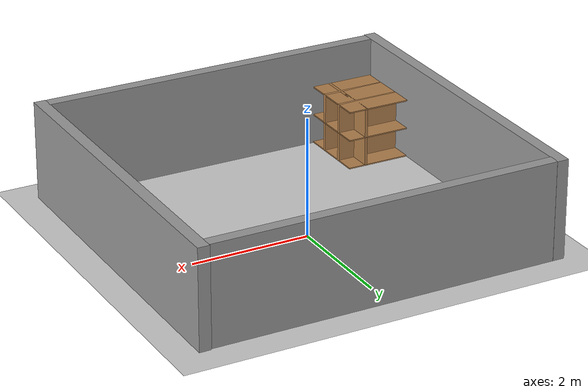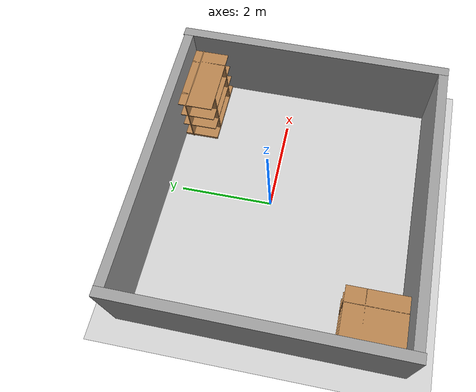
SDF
<sdf version="1.6">
 <world name="default">
  <light name="sun" type="directional">
   <pose>0 0 10 0 -0 0</pose>
   <diffuse>0.8 0.8 0.8 1</diffuse>
   <specular>0.1 0.1 0.1 1</specular>
   <attenuation>
    <range>1000</range>
    <constant>0.9</constant>
    <linear>0.01</linear>
    <quadratic>0.001</quadratic>
   </attenuation>
   <direction>-0.5 0.5 -1</direction>
  </light>
  <model name="ground_plane">
   <static>1</static>
   <link name="link">
    <collision name="collision">
     <geometry><plane><normal>0 0 1</normal><size>100 100</size></plane></geometry>
     <surface><friction><ode><mu>100</mu><mu2>50</mu2></ode></friction></surface>
    </collision>
    <visual name="visual">
     <cast_shadows>0</cast_shadows>
     <geometry><plane><normal>0 0 1</normal><size>100 100</size></plane></geometry>
     <material>
      <script><uri>file://media/materials/scripts/gazebo.material</uri><name>Gazebo/Grey</name></script>
     </material>
    </visual>
   </link>
  </model>
  <physics name="default_physics" default="0" type="ode">
   <max_step_size>0.01</max_step_size>
   <real_time_factor>1</real_time_factor>
   <real_time_update_rate>100</real_time_update_rate>
  </physics>
  <gravity>0 0 -9.8</gravity>
  <magnetic_field>6e-06 2.3e-05 -4.2e-05</magnetic_field>
  <atmosphere type="adiabatic"/>
  <scene><ambient>0.4 0.4 0.4 1</ambient><background>0.7 0.7 0.7 1</background><shadows>1</shadows></scene>
  <spherical_coordinates>
   <surface_model>EARTH_WGS84</surface_model>
   <latitude_deg>0</latitude_deg>
   <longitude_deg>0</longitude_deg>
   <elevation>0</elevation>
   <heading_deg>0</heading_deg>
  </spherical_coordinates>
  <model name="grey_wall">
   <link name="link">
    <pose>-0.48569 0.188637 0.831452 0 -0 0</pose>
    <inertial>
     <inertia><ixx>0</ixx><ixy>0</ixy><ixz>0</ixz><iyy>0</iyy><iyz>0</iyz><izz>0</izz></inertia>
     <mass>0</mass>
    </inertial>
    <visual name="visual">
     <cast_shadows>0</cast_shadows>
     <geometry><box><size>5.86088 0.2 1.66772</size></box></geometry>
     <material>
      <script>
       <uri>model://grey_wall/materials/scripts</uri>
       <uri>model://grey_wall/materials/textures</uri>
       <name>vrc/grey_wall</name>
      </script>
      <shader type="pixel"/>
      <ambient>1 1 1 1</ambient>
      <diffuse>1 1 1 1</diffuse>
      <specular>0 0 0 1</specular>
      <emissive>0 0 0 1</emissive>
     </material>
    </visual>
    <collision name="collision">
     <geometry><box><size>5.86088 0.2 1.66772</size></box></geometry>
     <surface>
      <friction>
       <ode><mu>1</mu><mu2>1</mu2><fdir1>0 0 0</fdir1><slip1>0</slip1><slip2>0</slip2></ode>
       <torsional>
        <coefficient>1</coefficient>
        <patch_radius>0</patch_radius>
        <surface_radius>0</surface_radius>
        <use_patch_radius>1</use_patch_radius>
        <ode><slip>0</slip></ode>
       </torsional>
      </friction>
      <bounce><restitution_coefficient>0</restitution_coefficient><threshold>1e+06</threshold></bounce>
      <contact>
       <collide_without_contact>0</collide_without_contact>
       <collide_without_contact_bitmask>1</collide_without_contact_bitmask>
       <collide_bitmask>1</collide_bitmask>
       <ode>
        <soft_cfm>0</soft_cfm>
        <soft_erp>0.2</soft_erp>
        <kp>1e+13</kp>
        <kd>1</kd>
        <max_vel>0.01</max_vel>
        <min_depth>0</min_depth>
       </ode>
       <bullet>
        <split_impulse>1</split_impulse>
        <split_impulse_penetration_threshold>-0.01</split_impulse_penetration_threshold>
        <soft_cfm>0</soft_cfm>
        <soft_erp>0.2</soft_erp>
        <kp>1e+13</kp>
        <kd>1</kd>
       </bullet>
      </contact>
     </surface>
    </collision>
   </link>
   <static>1</static>
   <pose>0.507405 2.23419 0 0 -0 0</pose>
  </model>
  <model name="grey_wall_0">
   <link name="link">
    <pose>-0.48569 0.188637 0.831452 0 -0 0</pose>
    <inertial>
     <inertia><ixx>0</ixx><ixy>0</ixy><ixz>0</ixz><iyy>0</iyy><iyz>0</iyz><izz>0</izz></inertia>
     <mass>0</mass>
    </inertial>
    <visual name="visual">
     <cast_shadows>0</cast_shadows>
     <geometry><box><size>5.86088 0.2 1.66772</size></box></geometry>
     <material>
      <script>
       <uri>model://grey_wall/materials/scripts</uri>
       <uri>model://grey_wall/materials/textures</uri>
       <name>vrc/grey_wall</name>
      </script>
      <shader type="pixel"/>
      <ambient>1 1 1 1</ambient>
      <diffuse>1 1 1 1</diffuse>
      <specular>0 0 0 1</specular>
      <emissive>0 0 0 1</emissive>
     </material>
    </visual>
    <collision name="collision">
     <geometry><box><size>5.86088 0.2 1.66772</size></box></geometry>
     <surface>
      <friction>
       <ode><mu>1</mu><mu2>1</mu2><fdir1>0 0 0</fdir1><slip1>0</slip1><slip2>0</slip2></ode>
       <torsional>
        <coefficient>1</coefficient>
        <patch_radius>0</patch_radius>
        <surface_radius>0</surface_radius>
        <use_patch_radius>1</use_patch_radius>
        <ode><slip>0</slip></ode>
       </torsional>
      </friction>
      <bounce><restitution_coefficient>0</restitution_coefficient><threshold>1e+06</threshold></bounce>
      <contact>
       <collide_without_contact>0</collide_without_contact>
       <collide_without_contact_bitmask>1</collide_without_contact_bitmask>
       <collide_bitmask>1</collide_bitmask>
       <ode>
        <soft_cfm>0</soft_cfm>
        <soft_erp>0.2</soft_erp>
        <kp>1e+13</kp>
        <kd>1</kd>
        <max_vel>0.01</max_vel>
        <min_depth>0</min_depth>
       </ode>
       <bullet>
        <split_impulse>1</split_impulse>
        <split_impulse_penetration_threshold>-0.01</split_impulse_penetration_threshold>
        <soft_cfm>0</soft_cfm>
        <soft_erp>0.2</soft_erp>
        <kp>1e+13</kp>
        <kd>1</kd>
       </bullet>
      </contact>
     </surface>
    </collision>
   </link>
   <static>1</static>
   <pose>0.487991 -3.39836 0 0 -0 0</pose>
  </model>
  <model name="grey_wall_1">
   <link name="link">
    <pose>-0.48569 0.188637 0.831452 0 -0 0</pose>
    <inertial>
     <inertia><ixx>0</ixx><ixy>0</ixy><ixz>0</ixz><iyy>0</iyy><iyz>0</iyz><izz>0</izz></inertia>
     <mass>0</mass>
    </inertial>
    <visual name="visual">
     <cast_shadows>0</cast_shadows>
     <geometry><box><size>5.86088 0.2 1.66772</size></box></geometry>
     <material>
      <script>
       <uri>model://grey_wall/materials/scripts</uri>
       <uri>model://grey_wall/materials/textures</uri>
       <name>vrc/grey_wall</name>
      </script>
      <shader type="pixel"/>
      <ambient>1 1 1 1</ambient>
      <diffuse>1 1 1 1</diffuse>
      <specular>0 0 0 1</specular>
      <emissive>0 0 0 1</emissive>
     </material>
    </visual>
    <collision name="collision">
     <geometry><box><size>5.86088 0.2 1.66772</size></box></geometry>
     <surface>
      <friction>
       <ode><mu>1</mu><mu2>1</mu2><fdir1>0 0 0</fdir1><slip1>0</slip1><slip2>0</slip2></ode>
       <torsional>
        <coefficient>1</coefficient>
        <patch_radius>0</patch_radius>
        <surface_radius>0</surface_radius>
        <use_patch_radius>1</use_patch_radius>
        <ode><slip>0</slip></ode>
       </torsional>
      </friction>
      <bounce><restitution_coefficient>0</restitution_coefficient><threshold>1e+06</threshold></bounce>
      <contact>
       <collide_without_contact>0</collide_without_contact>
       <collide_without_contact_bitmask>1</collide_without_contact_bitmask>
       <collide_bitmask>1</collide_bitmask>
       <ode>
        <soft_cfm>0</soft_cfm>
        <soft_erp>0.2</soft_erp>
        <kp>1e+13</kp>
        <kd>1</kd>
        <max_vel>0.01</max_vel>
        <min_depth>0</min_depth>
       </ode>
       <bullet>
        <split_impulse>1</split_impulse>
        <split_impulse_penetration_threshold>-0.01</split_impulse_penetration_threshold>
        <soft_cfm>0</soft_cfm>
        <soft_erp>0.2</soft_erp>
        <kp>1e+13</kp>
        <kd>1</kd>
       </bullet>
      </contact>
     </surface>
    </collision>
   </link>
   <static>1</static>
   <pose>-3.20065 -0.889155 0 0 0 -1.57563</pose>
  </model>
  <model name="grey_wall_2">
   <link name="link">
    <pose>-0.48569 0.188637 0.831452 0 -0 0</pose>
    <inertial>
     <inertia><ixx>0</ixx><ixy>0</ixy><ixz>0</ixz><iyy>0</iyy><iyz>0</iyz><izz>0</izz></inertia>
     <mass>0</mass>
    </inertial>
    <visual name="visual">
     <cast_shadows>0</cast_shadows>
     <geometry><box><size>5.86088 0.2 1.66772</size></box></geometry>
     <material>
      <script>
       <uri>model://grey_wall/materials/scripts</uri>
       <uri>model://grey_wall/materials/textures</uri>
       <name>vrc/grey_wall</name>
      </script>
      <shader type="pixel"/>
      <ambient>1 1 1 1</ambient>
      <diffuse>1 1 1 1</diffuse>
      <specular>0 0 0 1</specular>
      <emissive>0 0 0 1</emissive>
     </material>
    </visual>
    <collision name="collision">
     <geometry><box><size>5.86088 0.2 1.66772</size></box></geometry>
     <surface>
      <friction>
       <ode><mu>1</mu><mu2>1</mu2><fdir1>0 0 0</fdir1><slip1>0</slip1><slip2>0</slip2></ode>
       <torsional>
        <coefficient>1</coefficient>
        <patch_radius>0</patch_radius>
        <surface_radius>0</surface_radius>
        <use_patch_radius>1</use_patch_radius>
        <ode><slip>0</slip></ode>
       </torsional>
      </friction>
      <bounce><restitution_coefficient>0</restitution_coefficient><threshold>1e+06</threshold></bounce>
      <contact>
       <collide_without_contact>0</collide_without_contact>
       <collide_without_contact_bitmask>1</collide_without_contact_bitmask>
       <collide_bitmask>1</collide_bitmask>
       <ode>
        <soft_cfm>0</soft_cfm>
        <soft_erp>0.2</soft_erp>
        <kp>1e+13</kp>
        <kd>1</kd>
        <max_vel>0.01</max_vel>
        <min_depth>0</min_depth>
       </ode>
       <bullet>
        <split_impulse>1</split_impulse>
        <split_impulse_penetration_threshold>-0.01</split_impulse_penetration_threshold>
        <soft_cfm>0</soft_cfm>
        <soft_erp>0.2</soft_erp>
        <kp>1e+13</kp>
        <kd>1</kd>
       </bullet>
      </contact>
     </surface>
    </collision>
   </link>
   <static>1</static>
   <pose>2.84644 -0.870027 0 0 0 -1.57533</pose>
  </model>
  <model name="bookshelf">
   <link name="link">
    <pose>-0.304722 -0.168399 0 0 -0 0</pose>
    <inertial>
     <mass>3.25291</mass>
     <inertia>
      <ixx>0.154111</ixx>
      <ixy>0</ixy>
      <ixz>0</ixz>
      <iyy>0.623638</iyy>
      <iyz>0</iyz>
      <izz>0.777532</izz>
     </inertia>
    </inertial>
    <visual name="visual1">
     <pose>0 0.005 0.6 0 -0 0</pose>
     <geometry><box><size>1.55111 0.019743 1.2</size></box></geometry>
     <material>
      <script><uri>file://media/materials/scripts/gazebo.material</uri><name>Gazebo/Wood</name></script>
      <shader type="pixel"/>
      <ambient>1 1 1 1</ambient>
      <diffuse>1 1 1 1</diffuse>
      <specular>0.2 0.2 0.2 1</specular>
      <emissive>0 0 0 1</emissive>
     </material>
    </visual>
    <visual name="visual2">
     <pose>0.45 -0.195 0.6 0 -0 0</pose>
     <geometry><box><size>0.033772 0.753735 1.2</size></box></geometry>
     <material>
      <script><uri>file://media/materials/scripts/gazebo.material</uri><name>Gazebo/Wood</name></script>
      <shader type="pixel"/>
      <ambient>1 1 1 1</ambient>
      <diffuse>1 1 1 1</diffuse>
      <specular>0.2 0.2 0.2 1</specular>
      <emissive>0 0 0 1</emissive>
     </material>
    </visual>
    <visual name="visual3">
     <pose>-0.45 -0.195 0.6 0 -0 0</pose>
     <geometry><box><size>0.033772 0.753735 1.2</size></box></geometry>
     <material>
      <script><uri>file://media/materials/scripts/gazebo.material</uri><name>Gazebo/Wood</name></script>
      <shader type="pixel"/>
      <ambient>1 1 1 1</ambient>
      <diffuse>1 1 1 1</diffuse>
      <specular>0.2 0.2 0.2 1</specular>
      <emissive>0 0 0 1</emissive>
     </material>
    </visual>
    <visual name="visual4">
     <pose>0 -0.195 0.03 0 -0 0</pose>
     <geometry><box><size>1.51664 0.753735 0.06</size></box></geometry>
     <material>
      <script><uri>file://media/materials/scripts/gazebo.material</uri><name>Gazebo/Wood</name></script>
      <shader type="pixel"/>
      <ambient>1 1 1 1</ambient>
      <diffuse>1 1 1 1</diffuse>
      <specular>0.2 0.2 0.2 1</specular>
      <emissive>0 0 0 1</emissive>
     </material>
    </visual>
    <visual name="visual5">
     <pose>0 -0.195 1.19 0 -0 0</pose>
     <geometry><box><size>1.51664 0.753735 0.02</size></box></geometry>
     <material>
      <script><uri>file://media/materials/scripts/gazebo.material</uri><name>Gazebo/Wood</name></script>
      <shader type="pixel"/>
      <ambient>1 1 1 1</ambient>
      <diffuse>1 1 1 1</diffuse>
      <specular>0.2 0.2 0.2 1</specular>
      <emissive>0 0 0 1</emissive>
     </material>
    </visual>
    <visual name="visual6">
     <pose>0 -0.195 0.43 0 -0 0</pose>
     <geometry><box><size>1.51664 0.753735 0.02</size></box></geometry>
     <material>
      <script><uri>file://media/materials/scripts/gazebo.material</uri><name>Gazebo/Wood</name></script>
      <shader type="pixel"/>
      <ambient>1 1 1 1</ambient>
      <diffuse>1 1 1 1</diffuse>
      <specular>0.2 0.2 0.2 1</specular>
      <emissive>0 0 0 1</emissive>
     </material>
    </visual>
    <visual name="visual7">
     <pose>0 -0.195 0.8 0 -0 0</pose>
     <geometry><box><size>1.51664 0.753735 0.02</size></box></geometry>
     <material>
      <script><uri>file://media/materials/scripts/gazebo.material</uri><name>Gazebo/Wood</name></script>
      <shader type="pixel"/>
      <ambient>1 1 1 1</ambient>
      <diffuse>1 1 1 1</diffuse>
      <specular>0.2 0.2 0.2 1</specular>
      <emissive>0 0 0 1</emissive>
     </material>
    </visual>
    <collision name="left_side">
     <pose>0.45 -0.195 0.6 0 -0 0</pose>
     <geometry><box><size>0.033772 0.753735 1.2</size></box></geometry>
     <surface>
      <friction>
       <ode><mu>1</mu><mu2>1</mu2><fdir1>0 0 0</fdir1><slip1>0</slip1><slip2>0</slip2></ode>
       <torsional>
        <coefficient>1</coefficient>
        <patch_radius>0</patch_radius>
        <surface_radius>0</surface_radius>
        <use_patch_radius>1</use_patch_radius>
        <ode><slip>0</slip></ode>
       </torsional>
      </friction>
      <bounce><restitution_coefficient>0</restitution_coefficient><threshold>1e+06</threshold></bounce>
      <contact>
       <collide_without_contact>0</collide_without_contact>
       <collide_without_contact_bitmask>1</collide_without_contact_bitmask>
       <collide_bitmask>1</collide_bitmask>
       <ode>
        <soft_cfm>0</soft_cfm>
        <soft_erp>0.2</soft_erp>
        <kp>1e+13</kp>
        <kd>1</kd>
        <max_vel>0.01</max_vel>
        <min_depth>0</min_depth>
       </ode>
       <bullet>
        <split_impulse>1</split_impulse>
        <split_impulse_penetration_threshold>-0.01</split_impulse_penetration_threshold>
        <soft_cfm>0</soft_cfm>
        <soft_erp>0.2</soft_erp>
        <kp>1e+13</kp>
        <kd>1</kd>
       </bullet>
      </contact>
     </surface>
    </collision>
    <collision name="back">
     <pose>0 0.005 0.6 0 -0 0</pose>
     <geometry><box><size>1.55111 0.019743 1.2</size></box></geometry>
     <surface>
      <friction>
       <ode><mu>1</mu><mu2>1</mu2><fdir1>0 0 0</fdir1><slip1>0</slip1><slip2>0</slip2></ode>
       <torsional>
        <coefficient>1</coefficient>
        <patch_radius>0</patch_radius>
        <surface_radius>0</surface_radius>
        <use_patch_radius>1</use_patch_radius>
        <ode><slip>0</slip></ode>
       </torsional>
      </friction>
      <bounce><restitution_coefficient>0</restitution_coefficient><threshold>1e+06</threshold></bounce>
      <contact>
       <collide_without_contact>0</collide_without_contact>
       <collide_without_contact_bitmask>1</collide_without_contact_bitmask>
       <collide_bitmask>1</collide_bitmask>
       <ode>
        <soft_cfm>0</soft_cfm>
        <soft_erp>0.2</soft_erp>
        <kp>1e+13</kp>
        <kd>1</kd>
        <max_vel>0.01</max_vel>
        <min_depth>0</min_depth>
       </ode>
       <bullet>
        <split_impulse>1</split_impulse>
        <split_impulse_penetration_threshold>-0.01</split_impulse_penetration_threshold>
        <soft_cfm>0</soft_cfm>
        <soft_erp>0.2</soft_erp>
        <kp>1e+13</kp>
        <kd>1</kd>
       </bullet>
      </contact>
     </surface>
    </collision>
    <collision name="right_side">
     <pose>-0.45 -0.195 0.6 0 -0 0</pose>
     <geometry><box><size>0.033772 0.753735 1.2</size></box></geometry>
     <surface>
      <friction>
       <ode><mu>1</mu><mu2>1</mu2><fdir1>0 0 0</fdir1><slip1>0</slip1><slip2>0</slip2></ode>
       <torsional>
        <coefficient>1</coefficient>
        <patch_radius>0</patch_radius>
        <surface_radius>0</surface_radius>
        <use_patch_radius>1</use_patch_radius>
        <ode><slip>0</slip></ode>
       </torsional>
      </friction>
      <bounce><restitution_coefficient>0</restitution_coefficient><threshold>1e+06</threshold></bounce>
      <contact>
       <collide_without_contact>0</collide_without_contact>
       <collide_without_contact_bitmask>1</collide_without_contact_bitmask>
       <collide_bitmask>1</collide_bitmask>
       <ode>
        <soft_cfm>0</soft_cfm>
        <soft_erp>0.2</soft_erp>
        <kp>1e+13</kp>
        <kd>1</kd>
        <max_vel>0.01</max_vel>
        <min_depth>0</min_depth>
       </ode>
       <bullet>
        <split_impulse>1</split_impulse>
        <split_impulse_penetration_threshold>-0.01</split_impulse_penetration_threshold>
        <soft_cfm>0</soft_cfm>
        <soft_erp>0.2</soft_erp>
        <kp>1e+13</kp>
        <kd>1</kd>
       </bullet>
      </contact>
     </surface>
    </collision>
    <collision name="bottom">
     <pose>0 -0.195 0.03 0 -0 0</pose>
     <geometry><box><size>1.51664 0.753735 0.06</size></box></geometry>
     <surface>
      <friction>
       <ode><mu>1</mu><mu2>1</mu2><fdir1>0 0 0</fdir1><slip1>0</slip1><slip2>0</slip2></ode>
       <torsional>
        <coefficient>1</coefficient>
        <patch_radius>0</patch_radius>
        <surface_radius>0</surface_radius>
        <use_patch_radius>1</use_patch_radius>
        <ode><slip>0</slip></ode>
       </torsional>
      </friction>
      <bounce><restitution_coefficient>0</restitution_coefficient><threshold>1e+06</threshold></bounce>
      <contact>
       <collide_without_contact>0</collide_without_contact>
       <collide_without_contact_bitmask>1</collide_without_contact_bitmask>
       <collide_bitmask>1</collide_bitmask>
       <ode>
        <soft_cfm>0</soft_cfm>
        <soft_erp>0.2</soft_erp>
        <kp>1e+13</kp>
        <kd>1</kd>
        <max_vel>0.01</max_vel>
        <min_depth>0</min_depth>
       </ode>
       <bullet>
        <split_impulse>1</split_impulse>
        <split_impulse_penetration_threshold>-0.01</split_impulse_penetration_threshold>
        <soft_cfm>0</soft_cfm>
        <soft_erp>0.2</soft_erp>
        <kp>1e+13</kp>
        <kd>1</kd>
       </bullet>
      </contact>
     </surface>
    </collision>
    <collision name="top">
     <pose>0 -0.195 1.19 0 -0 0</pose>
     <geometry><box><size>1.51664 0.753735 0.02</size></box></geometry>
     <surface>
      <friction>
       <ode><mu>1</mu><mu2>1</mu2><fdir1>0 0 0</fdir1><slip1>0</slip1><slip2>0</slip2></ode>
       <torsional>
        <coefficient>1</coefficient>
        <patch_radius>0</patch_radius>
        <surface_radius>0</surface_radius>
        <use_patch_radius>1</use_patch_radius>
        <ode><slip>0</slip></ode>
       </torsional>
      </friction>
      <bounce><restitution_coefficient>0</restitution_coefficient><threshold>1e+06</threshold></bounce>
      <contact>
       <collide_without_contact>0</collide_without_contact>
       <collide_without_contact_bitmask>1</collide_without_contact_bitmask>
       <collide_bitmask>1</collide_bitmask>
       <ode>
        <soft_cfm>0</soft_cfm>
        <soft_erp>0.2</soft_erp>
        <kp>1e+13</kp>
        <kd>1</kd>
        <max_vel>0.01</max_vel>
        <min_depth>0</min_depth>
       </ode>
       <bullet>
        <split_impulse>1</split_impulse>
        <split_impulse_penetration_threshold>-0.01</split_impulse_penetration_threshold>
        <soft_cfm>0</soft_cfm>
        <soft_erp>0.2</soft_erp>
        <kp>1e+13</kp>
        <kd>1</kd>
       </bullet>
      </contact>
     </surface>
    </collision>
    <collision name="low_shelf">
     <pose>0 -0.195 0.43 0 -0 0</pose>
     <geometry><box><size>1.51664 0.753735 0.02</size></box></geometry>
     <surface>
      <friction>
       <ode><mu>1</mu><mu2>1</mu2><fdir1>0 0 0</fdir1><slip1>0</slip1><slip2>0</slip2></ode>
       <torsional>
        <coefficient>1</coefficient>
        <patch_radius>0</patch_radius>
        <surface_radius>0</surface_radius>
        <use_patch_radius>1</use_patch_radius>
        <ode><slip>0</slip></ode>
       </torsional>
      </friction>
      <bounce><restitution_coefficient>0</restitution_coefficient><threshold>1e+06</threshold></bounce>
      <contact>
       <collide_without_contact>0</collide_without_contact>
       <collide_without_contact_bitmask>1</collide_without_contact_bitmask>
       <collide_bitmask>1</collide_bitmask>
       <ode>
        <soft_cfm>0</soft_cfm>
        <soft_erp>0.2</soft_erp>
        <kp>1e+13</kp>
        <kd>1</kd>
        <max_vel>0.01</max_vel>
        <min_depth>0</min_depth>
       </ode>
       <bullet>
        <split_impulse>1</split_impulse>
        <split_impulse_penetration_threshold>-0.01</split_impulse_penetration_threshold>
        <soft_cfm>0</soft_cfm>
        <soft_erp>0.2</soft_erp>
        <kp>1e+13</kp>
        <kd>1</kd>
       </bullet>
      </contact>
     </surface>
    </collision>
    <collision name="high_shelf">
     <pose>0 -0.195 0.8 0 -0 0</pose>
     <geometry><box><size>1.51664 0.753735 0.02</size></box></geometry>
     <surface>
      <friction>
       <ode><mu>1</mu><mu2>1</mu2><fdir1>0 0 0</fdir1><slip1>0</slip1><slip2>0</slip2></ode>
       <torsional>
        <coefficient>1</coefficient>
        <patch_radius>0</patch_radius>
        <surface_radius>0</surface_radius>
        <use_patch_radius>1</use_patch_radius>
        <ode><slip>0</slip></ode>
       </torsional>
      </friction>
      <bounce><restitution_coefficient>0</restitution_coefficient><threshold>1e+06</threshold></bounce>
      <contact>
       <collide_without_contact>0</collide_without_contact>
       <collide_without_contact_bitmask>1</collide_without_contact_bitmask>
       <collide_bitmask>1</collide_bitmask>
       <ode>
        <soft_cfm>0</soft_cfm>
        <soft_erp>0.2</soft_erp>
        <kp>1e+13</kp>
        <kd>1</kd>
        <max_vel>0.01</max_vel>
        <min_depth>0</min_depth>
       </ode>
       <bullet>
        <split_impulse>1</split_impulse>
        <split_impulse_penetration_threshold>-0.01</split_impulse_penetration_threshold>
        <soft_cfm>0</soft_cfm>
        <soft_erp>0.2</soft_erp>
        <kp>1e+13</kp>
        <kd>1</kd>
       </bullet>
      </contact>
     </surface>
    </collision>
   </link>
   <static>1</static>
   <pose>2.47693 2.30546 0 0 -0 0</pose>
  </model>
  <model name="cabinet">
   <link name="cabinet_bottom_plate">
    <pose>0.32076 0.360854 0 0 -0 0</pose>
    <inertial>
     <pose>0 0 -0.02 0 -0 0</pose>
     <inertia><ixx>21.2976</ixx><ixy>0</ixy><ixz>0</ixz><iyy>16.4282</iyy><iyz>0</iyz><izz>37.7147</izz></inertia>
     <mass>166.71</mass>
    </inertial>
    <visual name="cabinet_bottom_plate_geom_visual">
     <pose>0 0 0.01 0 -0 0</pose>
     <geometry><box><size>1.08726 1.23799 0.02</size></box></geometry>
     <material>
      <script><uri>file://media/materials/scripts/gazebo.material</uri><name>Gazebo/Wood</name></script>
      <shader type="pixel"/>
      <ambient>1 1 1 1</ambient>
      <diffuse>1 1 1 1</diffuse>
      <specular>0.2 0.2 0.2 1</specular>
      <emissive>0 0 0 1</emissive>
     </material>
    </visual>
    <visual name="cabinet_bottom_plate_geom_cabinet_back_plate_visual">
     <pose>0.235 0 0.51 0 -0 0</pose>
     <geometry><box><size>0.049005 1.23799 1.02</size></box></geometry>
     <material>
      <script><uri>file://media/materials/scripts/gazebo.material</uri><name>Gazebo/Wood</name></script>
      <shader type="pixel"/>
      <ambient>1 1 1 1</ambient>
      <diffuse>1 1 1 1</diffuse>
      <specular>0.2 0.2 0.2 1</specular>
      <emissive>0 0 0 1</emissive>
     </material>
    </visual>
    <visual name="cabinet_bottom_plate_geom_cabinet_left_plate_visual">
     <pose>0 0.235 0.51 0 -0 0</pose>
     <geometry><box><size>1.08726 0.055022 1.02</size></box></geometry>
     <material>
      <script><uri>file://media/materials/scripts/gazebo.material</uri><name>Gazebo/Wood</name></script>
      <shader type="pixel"/>
      <ambient>1 1 1 1</ambient>
      <diffuse>1 1 1 1</diffuse>
      <specular>0.2 0.2 0.2 1</specular>
      <emissive>0 0 0 1</emissive>
     </material>
    </visual>
    <visual name="cabinet_bottom_plate_geom_cabinet_middle_plate_visual">
     <pose>0 0 0.51 0 -0 0</pose>
     <geometry><box><size>1.08726 1.23799 0.02</size></box></geometry>
     <material>
      <script><uri>file://media/materials/scripts/gazebo.material</uri><name>Gazebo/Wood</name></script>
      <shader type="pixel"/>
      <ambient>1 1 1 1</ambient>
      <diffuse>1 1 1 1</diffuse>
      <specular>0.2 0.2 0.2 1</specular>
      <emissive>0 0 0 1</emissive>
     </material>
    </visual>
    <visual name="cabinet_bottom_plate_geom_cabinet_right_plate_visual">
     <pose>0 -0.235 0.51 0 -0 0</pose>
     <geometry><box><size>1.08726 0.055022 1.02</size></box></geometry>
     <material>
      <script><uri>file://media/materials/scripts/gazebo.material</uri><name>Gazebo/Wood</name></script>
      <shader type="pixel"/>
      <ambient>1 1 1 1</ambient>
      <diffuse>1 1 1 1</diffuse>
      <specular>0.2 0.2 0.2 1</specular>
      <emissive>0 0 0 1</emissive>
     </material>
    </visual>
    <visual name="cabinet_bottom_plate_geom_cabinet_top_plate_visual">
     <pose>0 0 1.01 0 -0 0</pose>
     <geometry><box><size>1.08726 1.23799 0.02</size></box></geometry>
     <material>
      <script><uri>file://media/materials/scripts/gazebo.material</uri><name>Gazebo/Wood</name></script>
      <shader type="pixel"/>
      <ambient>1 1 1 1</ambient>
      <diffuse>1 1 1 1</diffuse>
      <specular>0.2 0.2 0.2 1</specular>
      <emissive>0 0 0 1</emissive>
     </material>
    </visual>
    <collision name="cabinet_bottom_plate_geom">
     <pose>0 0 0.01 0 -0 0</pose>
     <geometry><box><size>1.08726 1.23799 0.02</size></box></geometry>
     <surface>
      <friction>
       <ode><mu>1</mu><mu2>1</mu2><fdir1>0 0 0</fdir1><slip1>0</slip1><slip2>0</slip2></ode>
       <torsional>
        <coefficient>1</coefficient>
        <patch_radius>0</patch_radius>
        <surface_radius>0</surface_radius>
        <use_patch_radius>1</use_patch_radius>
        <ode><slip>0</slip></ode>
       </torsional>
      </friction>
      <bounce><restitution_coefficient>0</restitution_coefficient><threshold>1e+06</threshold></bounce>
      <contact>
       <collide_without_contact>0</collide_without_contact>
       <collide_without_contact_bitmask>1</collide_without_contact_bitmask>
       <collide_bitmask>1</collide_bitmask>
       <ode>
        <soft_cfm>0</soft_cfm>
        <soft_erp>0.2</soft_erp>
        <kp>1e+13</kp>
        <kd>1</kd>
        <max_vel>0.01</max_vel>
        <min_depth>0</min_depth>
       </ode>
       <bullet>
        <split_impulse>1</split_impulse>
        <split_impulse_penetration_threshold>-0.01</split_impulse_penetration_threshold>
        <soft_cfm>0</soft_cfm>
        <soft_erp>0.2</soft_erp>
        <kp>1e+13</kp>
        <kd>1</kd>
       </bullet>
      </contact>
     </surface>
    </collision>
    <collision name="cabinet_bottom_plate_geom_cabinet_back_plate">
     <pose>0.235 0 0.51 0 -0 0</pose>
     <geometry><box><size>0.049005 1.23799 1.02</size></box></geometry>
     <surface>
      <friction>
       <ode><mu>1</mu><mu2>1</mu2><fdir1>0 0 0</fdir1><slip1>0</slip1><slip2>0</slip2></ode>
       <torsional>
        <coefficient>1</coefficient>
        <patch_radius>0</patch_radius>
        <surface_radius>0</surface_radius>
        <use_patch_radius>1</use_patch_radius>
        <ode><slip>0</slip></ode>
       </torsional>
      </friction>
      <bounce><restitution_coefficient>0</restitution_coefficient><threshold>1e+06</threshold></bounce>
      <contact>
       <collide_without_contact>0</collide_without_contact>
       <collide_without_contact_bitmask>1</collide_without_contact_bitmask>
       <collide_bitmask>1</collide_bitmask>
       <ode>
        <soft_cfm>0</soft_cfm>
        <soft_erp>0.2</soft_erp>
        <kp>1e+13</kp>
        <kd>1</kd>
        <max_vel>0.01</max_vel>
        <min_depth>0</min_depth>
       </ode>
       <bullet>
        <split_impulse>1</split_impulse>
        <split_impulse_penetration_threshold>-0.01</split_impulse_penetration_threshold>
        <soft_cfm>0</soft_cfm>
        <soft_erp>0.2</soft_erp>
        <kp>1e+13</kp>
        <kd>1</kd>
       </bullet>
      </contact>
     </surface>
    </collision>
    <collision name="cabinet_bottom_plate_geom_cabinet_left_plate">
     <pose>0 0.235 0.51 0 -0 0</pose>
     <geometry><box><size>1.08726 0.055022 1.02</size></box></geometry>
     <surface>
      <friction>
       <ode><mu>1</mu><mu2>1</mu2><fdir1>0 0 0</fdir1><slip1>0</slip1><slip2>0</slip2></ode>
       <torsional>
        <coefficient>1</coefficient>
        <patch_radius>0</patch_radius>
        <surface_radius>0</surface_radius>
        <use_patch_radius>1</use_patch_radius>
        <ode><slip>0</slip></ode>
       </torsional>
      </friction>
      <bounce><restitution_coefficient>0</restitution_coefficient><threshold>1e+06</threshold></bounce>
      <contact>
       <collide_without_contact>0</collide_without_contact>
       <collide_without_contact_bitmask>1</collide_without_contact_bitmask>
       <collide_bitmask>1</collide_bitmask>
       <ode>
        <soft_cfm>0</soft_cfm>
        <soft_erp>0.2</soft_erp>
        <kp>1e+13</kp>
        <kd>1</kd>
        <max_vel>0.01</max_vel>
        <min_depth>0</min_depth>
       </ode>
       <bullet>
        <split_impulse>1</split_impulse>
        <split_impulse_penetration_threshold>-0.01</split_impulse_penetration_threshold>
        <soft_cfm>0</soft_cfm>
        <soft_erp>0.2</soft_erp>
        <kp>1e+13</kp>
        <kd>1</kd>
       </bullet>
      </contact>
     </surface>
    </collision>
    <collision name="cabinet_bottom_plate_geom_cabinet_middle_plate">
     <pose>0 0 0.51 0 -0 0</pose>
     <geometry><box><size>1.08726 1.23799 0.02</size></box></geometry>
     <surface>
      <friction>
       <ode><mu>1</mu><mu2>1</mu2><fdir1>0 0 0</fdir1><slip1>0</slip1><slip2>0</slip2></ode>
       <torsional>
        <coefficient>1</coefficient>
        <patch_radius>0</patch_radius>
        <surface_radius>0</surface_radius>
        <use_patch_radius>1</use_patch_radius>
        <ode><slip>0</slip></ode>
       </torsional>
      </friction>
      <bounce><restitution_coefficient>0</restitution_coefficient><threshold>1e+06</threshold></bounce>
      <contact>
       <collide_without_contact>0</collide_without_contact>
       <collide_without_contact_bitmask>1</collide_without_contact_bitmask>
       <collide_bitmask>1</collide_bitmask>
       <ode>
        <soft_cfm>0</soft_cfm>
        <soft_erp>0.2</soft_erp>
        <kp>1e+13</kp>
        <kd>1</kd>
        <max_vel>0.01</max_vel>
        <min_depth>0</min_depth>
       </ode>
       <bullet>
        <split_impulse>1</split_impulse>
        <split_impulse_penetration_threshold>-0.01</split_impulse_penetration_threshold>
        <soft_cfm>0</soft_cfm>
        <soft_erp>0.2</soft_erp>
        <kp>1e+13</kp>
        <kd>1</kd>
       </bullet>
      </contact>
     </surface>
    </collision>
    <collision name="cabinet_bottom_plate_geom_cabinet_right_plate">
     <pose>0 -0.235 0.51 0 -0 0</pose>
     <geometry><box><size>1.08726 0.055022 1.02</size></box></geometry>
     <surface>
      <friction>
       <ode><mu>1</mu><mu2>1</mu2><fdir1>0 0 0</fdir1><slip1>0</slip1><slip2>0</slip2></ode>
       <torsional>
        <coefficient>1</coefficient>
        <patch_radius>0</patch_radius>
        <surface_radius>0</surface_radius>
        <use_patch_radius>1</use_patch_radius>
        <ode><slip>0</slip></ode>
       </torsional>
      </friction>
      <bounce><restitution_coefficient>0</restitution_coefficient><threshold>1e+06</threshold></bounce>
      <contact>
       <collide_without_contact>0</collide_without_contact>
       <collide_without_contact_bitmask>1</collide_without_contact_bitmask>
       <collide_bitmask>1</collide_bitmask>
       <ode>
        <soft_cfm>0</soft_cfm>
        <soft_erp>0.2</soft_erp>
        <kp>1e+13</kp>
        <kd>1</kd>
        <max_vel>0.01</max_vel>
        <min_depth>0</min_depth>
       </ode>
       <bullet>
        <split_impulse>1</split_impulse>
        <split_impulse_penetration_threshold>-0.01</split_impulse_penetration_threshold>
        <soft_cfm>0</soft_cfm>
        <soft_erp>0.2</soft_erp>
        <kp>1e+13</kp>
        <kd>1</kd>
       </bullet>
      </contact>
     </surface>
    </collision>
    <collision name="cabinet_bottom_plate_geom_cabinet_top_plate">
     <pose>0 0 1.01 0 -0 0</pose>
     <geometry><box><size>1.08726 1.23799 0.02</size></box></geometry>
     <surface>
      <friction>
       <ode><mu>1</mu><mu2>1</mu2><fdir1>0 0 0</fdir1><slip1>0</slip1><slip2>0</slip2></ode>
       <torsional>
        <coefficient>1</coefficient>
        <patch_radius>0</patch_radius>
        <surface_radius>0</surface_radius>
        <use_patch_radius>1</use_patch_radius>
        <ode><slip>0</slip></ode>
       </torsional>
      </friction>
      <bounce><restitution_coefficient>0</restitution_coefficient><threshold>1e+06</threshold></bounce>
      <contact>
       <collide_without_contact>0</collide_without_contact>
       <collide_without_contact_bitmask>1</collide_without_contact_bitmask>
       <collide_bitmask>1</collide_bitmask>
       <ode>
        <soft_cfm>0</soft_cfm>
        <soft_erp>0.2</soft_erp>
        <kp>1e+13</kp>
        <kd>1</kd>
        <max_vel>0.01</max_vel>
        <min_depth>0</min_depth>
       </ode>
       <bullet>
        <split_impulse>1</split_impulse>
        <split_impulse_penetration_threshold>-0.01</split_impulse_penetration_threshold>
        <soft_cfm>0</soft_cfm>
        <soft_erp>0.2</soft_erp>
        <kp>1e+13</kp>
        <kd>1</kd>
       </bullet>
      </contact>
     </surface>
    </collision>
   </link>
   <static>1</static>
   <pose>-2.68636 -2.85075 0 0 -0 0</pose>
  </model>
 </world>
</sdf>
